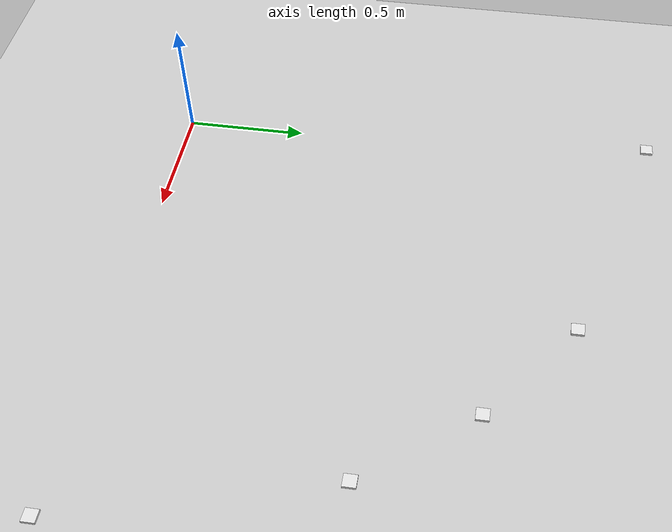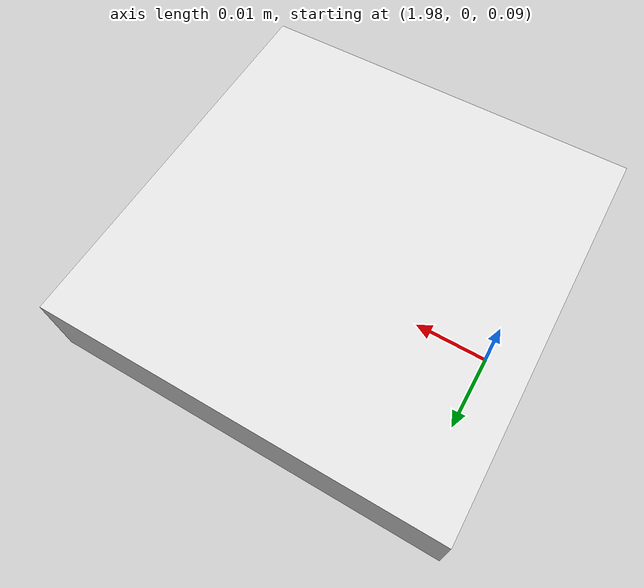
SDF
<sdf version="1.6">
 <world name="rfid_angle_test">
  <include><uri>model://sun</uri></include>
  <include><uri>model://ground_plane</uri></include>
  <model name="rfid_tag_0deg">
   <static>true</static>
   <pose>2 0 0.1 0 0 0</pose>
   <link name="tag_link">
    <inertial><mass>0.01</mass><inertia><ixx>1e-5</ixx><iyy>1e-5</iyy><izz>1e-5</izz></inertia></inertial>
    <collision name="collision"><geometry><box><size>0.05 0.05 0.01</size></box></geometry></collision>
    <visual name="visual">
     <geometry><box><size>0.05 0.05 0.01</size></box></geometry>
     <material><ambient>0.8 0.8 0.8 1</ambient><diffuse>0.9 0.9 0.9 1</diffuse></material>
    </visual>
   </link>
  </model>
  <model name="rfid_tag_30deg">
   <static>true</static>
   <pose>1.732 1 0.1 0 0 0</pose>
   <link name="tag_link">
    <inertial><mass>0.01</mass><inertia><ixx>1e-5</ixx><iyy>1e-5</iyy><izz>1e-5</izz></inertia></inertial>
    <collision name="collision"><geometry><box><size>0.05 0.05 0.01</size></box></geometry></collision>
    <visual name="visual">
     <geometry><box><size>0.05 0.05 0.01</size></box></geometry>
     <material><ambient>0.8 0.8 0.8 1</ambient><diffuse>0.9 0.9 0.9 1</diffuse></material>
    </visual>
   </link>
  </model>
  <model name="rfid_tag_45deg">
   <static>true</static>
   <pose>1.414 1.414 0.1 0 0 0</pose>
   <link name="tag_link">
    <inertial><mass>0.01</mass><inertia><ixx>1e-5</ixx><iyy>1e-5</iyy><izz>1e-5</izz></inertia></inertial>
    <collision name="collision"><geometry><box><size>0.05 0.05 0.01</size></box></geometry></collision>
    <visual name="visual">
     <geometry><box><size>0.05 0.05 0.01</size></box></geometry>
     <material><ambient>0.8 0.8 0.8 1</ambient><diffuse>0.9 0.9 0.9 1</diffuse></material>
    </visual>
   </link>
  </model>
  <model name="rfid_tag_60deg">
   <static>true</static>
   <pose>1 1.732 0.1 0 0 0</pose>
   <link name="tag_link">
    <inertial><mass>0.01</mass><inertia><ixx>1e-5</ixx><iyy>1e-5</iyy><izz>1e-5</izz></inertia></inertial>
    <collision name="collision"><geometry><box><size>0.05 0.05 0.01</size></box></geometry></collision>
    <visual name="visual">
     <geometry><box><size>0.05 0.05 0.01</size></box></geometry>
     <material><ambient>0.8 0.8 0.8 1</ambient><diffuse>0.9 0.9 0.9 1</diffuse></material>
    </visual>
   </link>
  </model>
  <model name="rfid_tag_90deg">
   <static>true</static>
   <pose>0 2 0.1 0 0 0</pose>
   <link name="tag_link">
    <inertial><mass>0.01</mass><inertia><ixx>1e-5</ixx><iyy>1e-5</iyy><izz>1e-5</izz></inertia></inertial>
    <collision name="collision"><geometry><box><size>0.05 0.05 0.01</size></box></geometry></collision>
    <visual name="visual">
     <geometry><box><size>0.05 0.05 0.01</size></box></geometry>
     <material><ambient>0.8 0.8 0.8 1</ambient><diffuse>0.9 0.9 0.9 1</diffuse></material>
    </visual>
   </link>
  </model>
 </world>
</sdf>
